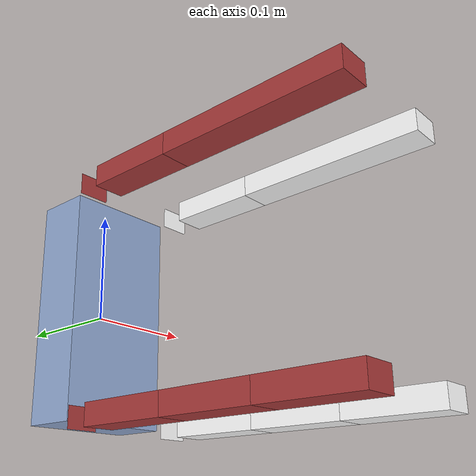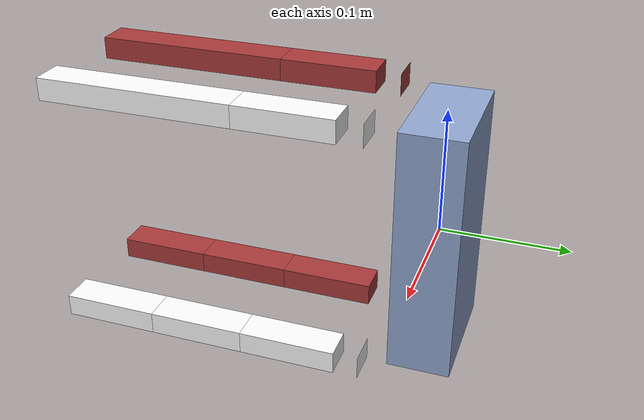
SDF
<?xml version='1.0' encoding='ASCII'?>
<sdf version="1.4">
  <model name="pendulum">
    <link name="Link00">
      <pose>0.000000 0.000000 0.000000 0.000000 0.000000 0.000000</pose>
      <inertial>
        <pose>0.000000 0.000000 0.000000 0.000000 0.000000 0.000000</pose>
        <mass>0.600000</mass>
        <inertia>
          <ixx>0.003541666667</ixx>
          <ixy>0.000000000000</ixy>
          <ixz>0.000000000000</ixz>
          <iyy>0.004166666667</iyy>
          <iyz>0.000000000000</iyz>
          <izz>0.001041666667</izz>
        </inertia>
      </inertial>
      <collision name="Link00_collision">
        <pose>0.000000 0.000000 0.000000 0.000000 0.000000 0.000000</pose>
        <geometry>
          <box>
            <size>0.100000 0.050000 0.200000</size>
          </box>
        </geometry>
      </collision>
      <visual name="Link00_vis_orig">
        <pose>0.000000 0.000000 0.000000 0.000000 0.000000 0.000000</pose>
        <geometry>
          <box>
            <size>0.100000 0.050000 0.200000</size>
          </box>
        </geometry>
        <material>
          <diffuse>0.568600 0.658800 0.819600</diffuse>
        </material>
      </visual>
    </link>
    <link name="Link02">
      <pose>0.050000 -0.025000 0.100000 0.000000 -0.000000 0.000000</pose>
      <inertial>
        <pose>0.000000 -0.020000 0.000000 0.000000 0.000000 0.000000</pose>
        <mass>0.170000</mass>
        <inertia>
          <ixx>0.000000833333</ixx>
          <ixy>0.000000000000</ixy>
          <ixz>0.000000000000</ixz>
          <iyy>0.000000833333</iyy>
          <iyz>0.000000000000</iyz>
          <izz>0.000000833333</izz>
        </inertia>
      </inertial>
      <collision name="Link02_collision">
        <pose>0.000000 -0.020000 0.000000 0.000000 0.000000 0.000000</pose>
        <geometry>
          <box>
            <size>0.028000 0.000000 0.018500</size>
          </box>
        </geometry>
      </collision>
      <visual name="Link02_vis_orig">
        <pose>0.000000 -0.020000 0.000000 0.000000 0.000000 0.000000</pose>
        <geometry>
          <box>
            <size>0.028000 0.000000 0.018500</size>
          </box>
        </geometry>
        <material>
          <diffuse>1.000000 1.000000 1.000000</diffuse>
        </material>
      </visual>
    </link>
    <link name="Link03">
      <pose>0.050000 -0.065000 0.100000 0.000000 -0.000000 0.000000</pose>
      <inertial>
        <pose>0.000000 -0.040000 0.000000 0.000000 0.000000 0.000000</pose>
        <mass>0.184359</mass>
        <inertia>
          <ixx>0.000027776667</ixx>
          <ixy>0.000000000000</ixy>
          <ixz>0.000000000000</ixz>
          <iyy>0.000000854667</iyy>
          <iyz>0.000000000000</iyz>
          <izz>0.000027776667</izz>
        </inertia>
      </inertial>
      <collision name="Link03_collision">
        <pose>0.000000 -0.040000 0.000000 0.000000 0.000000 0.000000</pose>
        <geometry>
          <box>
            <size>0.028000 0.080000 0.018500</size>
          </box>
        </geometry>
      </collision>
      <visual name="Link03_vis_orig">
        <pose>0.000000 -0.040000 0.000000 0.000000 0.000000 0.000000</pose>
        <geometry>
          <box>
            <size>0.028000 0.080000 0.018500</size>
          </box>
        </geometry>
        <material>
          <diffuse>1.000000 1.000000 1.000000</diffuse>
        </material>
      </visual>
    </link>
    <link name="Link04">
      <pose>0.050000 -0.145000 0.100000 0.000000 -0.000000 0.000000</pose>
      <inertial>
        <pose>0.000000 -0.080000 0.000000 0.000000 0.000000 0.000000</pose>
        <mass>0.034718</mass>
        <inertia>
          <ixx>0.000129014000</ixx>
          <ixy>0.000000000000</ixy>
          <ixz>0.000000000000</ixz>
          <iyy>0.000001004000</iyy>
          <iyz>0.000000000000</iyz>
          <izz>0.000129014000</izz>
        </inertia>
      </inertial>
      <collision name="Link04_collision">
        <pose>0.000000 -0.080000 0.000000 0.000000 0.000000 0.000000</pose>
        <geometry>
          <box>
            <size>0.028000 0.160000 0.018500</size>
          </box>
        </geometry>
      </collision>
      <visual name="Link04_vis_orig">
        <pose>0.000000 -0.080000 0.000000 0.000000 0.000000 0.000000</pose>
        <geometry>
          <box>
            <size>0.028000 0.160000 0.018500</size>
          </box>
        </geometry>
        <material>
          <diffuse>1.000000 1.000000 1.000000</diffuse>
        </material>
      </visual>
    </link>
    <link name="Link06">
      <pose>0.050000 -0.025000 -0.100000 0.000000 -0.000000 0.000000</pose>
      <inertial>
        <pose>0.000000 -0.020000 0.000000 0.000000 0.000000 0.000000</pose>
        <mass>0.170000</mass>
        <inertia>
          <ixx>0.000000833333</ixx>
          <ixy>0.000000000000</ixy>
          <ixz>0.000000000000</ixz>
          <iyy>0.000000833333</iyy>
          <iyz>0.000000000000</iyz>
          <izz>0.000000833333</izz>
        </inertia>
      </inertial>
      <collision name="Link06_collision">
        <pose>0.000000 -0.020000 0.000000 0.000000 0.000000 0.000000</pose>
        <geometry>
          <box>
            <size>0.028000 0.000000 0.018500</size>
          </box>
        </geometry>
      </collision>
      <visual name="Link06_vis_orig">
        <pose>0.000000 -0.020000 0.000000 0.000000 0.000000 0.000000</pose>
        <geometry>
          <box>
            <size>0.028000 0.000000 0.018500</size>
          </box>
        </geometry>
        <material>
          <diffuse>1.000000 1.000000 1.000000</diffuse>
        </material>
      </visual>
    </link>
    <link name="Link07">
      <pose>0.050000 -0.065000 -0.100000 0.000000 -0.000000 0.000000</pose>
      <inertial>
        <pose>0.000000 -0.040000 0.000000 0.000000 0.000000 0.000000</pose>
        <mass>0.184359</mass>
        <inertia>
          <ixx>0.000027776667</ixx>
          <ixy>0.000000000000</ixy>
          <ixz>0.000000000000</ixz>
          <iyy>0.000000854667</iyy>
          <iyz>0.000000000000</iyz>
          <izz>0.000027776667</izz>
        </inertia>
      </inertial>
      <collision name="Link07_collision">
        <pose>0.000000 -0.040000 0.000000 0.000000 0.000000 0.000000</pose>
        <geometry>
          <box>
            <size>0.028000 0.080000 0.018500</size>
          </box>
        </geometry>
      </collision>
      <visual name="Link07_vis_orig">
        <pose>0.000000 -0.040000 0.000000 0.000000 0.000000 0.000000</pose>
        <geometry>
          <box>
            <size>0.028000 0.080000 0.018500</size>
          </box>
        </geometry>
        <material>
          <diffuse>1.000000 1.000000 1.000000</diffuse>
        </material>
      </visual>
    </link>
    <link name="Link08">
      <pose>0.050000 -0.145000 -0.100000 0.000000 -0.000000 0.000000</pose>
      <inertial>
        <pose>0.000000 -0.040000 0.000000 0.000000 0.000000 0.000000</pose>
        <mass>0.184359</mass>
        <inertia>
          <ixx>0.000027776667</ixx>
          <ixy>0.000000000000</ixy>
          <ixz>0.000000000000</ixz>
          <iyy>0.000000854667</iyy>
          <iyz>0.000000000000</iyz>
          <izz>0.000027776667</izz>
        </inertia>
      </inertial>
      <collision name="Link08_collision">
        <pose>0.000000 -0.040000 0.000000 0.000000 0.000000 0.000000</pose>
        <geometry>
          <box>
            <size>0.028000 0.080000 0.018500</size>
          </box>
        </geometry>
      </collision>
      <visual name="Link08_vis_orig">
        <pose>0.000000 -0.040000 0.000000 0.000000 0.000000 0.000000</pose>
        <geometry>
          <box>
            <size>0.028000 0.080000 0.018500</size>
          </box>
        </geometry>
        <material>
          <diffuse>1.000000 1.000000 1.000000</diffuse>
        </material>
      </visual>
    </link>
    <link name="Link09">
      <pose>0.050000 -0.225000 -0.100000 0.000000 -0.000000 0.000000</pose>
      <inertial>
        <pose>0.000000 -0.040000 0.000000 0.000000 0.000000 0.000000</pose>
        <mass>0.020359</mass>
        <inertia>
          <ixx>0.000027776667</ixx>
          <ixy>0.000000000000</ixy>
          <ixz>0.000000000000</ixz>
          <iyy>0.000000854667</iyy>
          <iyz>0.000000000000</iyz>
          <izz>0.000027776667</izz>
        </inertia>
      </inertial>
      <collision name="Link09_collision">
        <pose>0.000000 -0.040000 0.000000 0.000000 0.000000 0.000000</pose>
        <geometry>
          <box>
            <size>0.028000 0.080000 0.018500</size>
          </box>
        </geometry>
      </collision>
      <visual name="Link09_vis_orig">
        <pose>0.000000 -0.040000 0.000000 0.000000 0.000000 0.000000</pose>
        <geometry>
          <box>
            <size>0.028000 0.080000 0.018500</size>
          </box>
        </geometry>
        <material>
          <diffuse>1.000000 1.000000 1.000000</diffuse>
        </material>
      </visual>
    </link>
    <link name="Link11">
      <pose>-0.050000 -0.025000 0.100000 0.000000 -0.000000 0.000000</pose>
      <inertial>
        <pose>0.000000 -0.020000 0.000000 0.000000 0.000000 0.000000</pose>
        <mass>0.170000</mass>
        <inertia>
          <ixx>0.000000833333</ixx>
          <ixy>0.000000000000</ixy>
          <ixz>0.000000000000</ixz>
          <iyy>0.000000833333</iyy>
          <iyz>0.000000000000</iyz>
          <izz>0.000000833333</izz>
        </inertia>
      </inertial>
      <collision name="Link11_collision">
        <pose>0.000000 -0.020000 0.000000 0.000000 0.000000 0.000000</pose>
        <geometry>
          <box>
            <size>0.028000 0.000000 0.018500</size>
          </box>
        </geometry>
      </collision>
      <visual name="Link11_vis_orig">
        <pose>0.000000 -0.020000 0.000000 0.000000 0.000000 0.000000</pose>
        <geometry>
          <box>
            <size>0.028000 0.000000 0.018500</size>
          </box>
        </geometry>
        <material>
          <diffuse>0.660000 0.224400 0.224400</diffuse>
        </material>
      </visual>
    </link>
    <link name="Link12">
      <pose>-0.050000 -0.065000 0.100000 0.000000 -0.000000 0.000000</pose>
      <inertial>
        <pose>0.000000 -0.040000 0.000000 0.000000 0.000000 0.000000</pose>
        <mass>0.184359</mass>
        <inertia>
          <ixx>0.000027776667</ixx>
          <ixy>0.000000000000</ixy>
          <ixz>0.000000000000</ixz>
          <iyy>0.000000854667</iyy>
          <iyz>0.000000000000</iyz>
          <izz>0.000027776667</izz>
        </inertia>
      </inertial>
      <collision name="Link12_collision">
        <pose>0.000000 -0.040000 0.000000 0.000000 0.000000 0.000000</pose>
        <geometry>
          <box>
            <size>0.028000 0.080000 0.018500</size>
          </box>
        </geometry>
      </collision>
      <visual name="Link12_vis_orig">
        <pose>0.000000 -0.040000 0.000000 0.000000 0.000000 0.000000</pose>
        <geometry>
          <box>
            <size>0.028000 0.080000 0.018500</size>
          </box>
        </geometry>
        <material>
          <diffuse>0.660000 0.224400 0.224400</diffuse>
        </material>
      </visual>
    </link>
    <link name="Link13">
      <pose>-0.050000 -0.145000 0.100000 0.000000 -0.000000 0.000000</pose>
      <inertial>
        <pose>0.000000 -0.080000 0.000000 0.000000 0.000000 0.000000</pose>
        <mass>0.034718</mass>
        <inertia>
          <ixx>0.000129014000</ixx>
          <ixy>0.000000000000</ixy>
          <ixz>0.000000000000</ixz>
          <iyy>0.000001004000</iyy>
          <iyz>0.000000000000</iyz>
          <izz>0.000129014000</izz>
        </inertia>
      </inertial>
      <collision name="Link13_collision">
        <pose>0.000000 -0.080000 0.000000 0.000000 0.000000 0.000000</pose>
        <geometry>
          <box>
            <size>0.028000 0.160000 0.018500</size>
          </box>
        </geometry>
      </collision>
      <visual name="Link13_vis_orig">
        <pose>0.000000 -0.080000 0.000000 0.000000 0.000000 0.000000</pose>
        <geometry>
          <box>
            <size>0.028000 0.160000 0.018500</size>
          </box>
        </geometry>
        <material>
          <diffuse>0.660000 0.224400 0.224400</diffuse>
        </material>
      </visual>
    </link>
    <link name="Link15">
      <pose>-0.050000 -0.025000 -0.100000 0.000000 -0.000000 0.000000</pose>
      <inertial>
        <pose>0.000000 -0.020000 0.000000 0.000000 0.000000 0.000000</pose>
        <mass>0.170000</mass>
        <inertia>
          <ixx>0.000000833333</ixx>
          <ixy>0.000000000000</ixy>
          <ixz>0.000000000000</ixz>
          <iyy>0.000000833333</iyy>
          <iyz>0.000000000000</iyz>
          <izz>0.000000833333</izz>
        </inertia>
      </inertial>
      <collision name="Link15_collision">
        <pose>0.000000 -0.020000 0.000000 0.000000 0.000000 0.000000</pose>
        <geometry>
          <box>
            <size>0.028000 0.000000 0.018500</size>
          </box>
        </geometry>
      </collision>
      <visual name="Link15_vis_orig">
        <pose>0.000000 -0.020000 0.000000 0.000000 0.000000 0.000000</pose>
        <geometry>
          <box>
            <size>0.028000 0.000000 0.018500</size>
          </box>
        </geometry>
        <material>
          <diffuse>0.660000 0.224400 0.224400</diffuse>
        </material>
      </visual>
    </link>
    <link name="Link16">
      <pose>-0.050000 -0.065000 -0.100000 0.000000 -0.000000 0.000000</pose>
      <inertial>
        <pose>0.000000 -0.040000 0.000000 0.000000 0.000000 0.000000</pose>
        <mass>0.184359</mass>
        <inertia>
          <ixx>0.000027776667</ixx>
          <ixy>0.000000000000</ixy>
          <ixz>0.000000000000</ixz>
          <iyy>0.000000854667</iyy>
          <iyz>0.000000000000</iyz>
          <izz>0.000027776667</izz>
        </inertia>
      </inertial>
      <collision name="Link16_collision">
        <pose>0.000000 -0.040000 0.000000 0.000000 0.000000 0.000000</pose>
        <geometry>
          <box>
            <size>0.028000 0.080000 0.018500</size>
          </box>
        </geometry>
      </collision>
      <visual name="Link16_vis_orig">
        <pose>0.000000 -0.040000 0.000000 0.000000 0.000000 0.000000</pose>
        <geometry>
          <box>
            <size>0.028000 0.080000 0.018500</size>
          </box>
        </geometry>
        <material>
          <diffuse>0.660000 0.224400 0.224400</diffuse>
        </material>
      </visual>
    </link>
    <link name="Link17">
      <pose>-0.050000 -0.145000 -0.100000 0.000000 -0.000000 0.000000</pose>
      <inertial>
        <pose>0.000000 -0.040000 0.000000 0.000000 0.000000 0.000000</pose>
        <mass>0.184359</mass>
        <inertia>
          <ixx>0.000027776667</ixx>
          <ixy>0.000000000000</ixy>
          <ixz>0.000000000000</ixz>
          <iyy>0.000000854667</iyy>
          <iyz>0.000000000000</iyz>
          <izz>0.000027776667</izz>
        </inertia>
      </inertial>
      <collision name="Link17_collision">
        <pose>0.000000 -0.040000 0.000000 0.000000 0.000000 0.000000</pose>
        <geometry>
          <box>
            <size>0.028000 0.080000 0.018500</size>
          </box>
        </geometry>
      </collision>
      <visual name="Link17_vis_orig">
        <pose>0.000000 -0.040000 0.000000 0.000000 0.000000 0.000000</pose>
        <geometry>
          <box>
            <size>0.028000 0.080000 0.018500</size>
          </box>
        </geometry>
        <material>
          <diffuse>0.660000 0.224400 0.224400</diffuse>
        </material>
      </visual>
    </link>
    <link name="Link18">
      <pose>-0.050000 -0.225000 -0.100000 0.000000 -0.000000 0.000000</pose>
      <inertial>
        <pose>0.000000 -0.040000 0.000000 0.000000 0.000000 0.000000</pose>
        <mass>0.020359</mass>
        <inertia>
          <ixx>0.000027776667</ixx>
          <ixy>0.000000000000</ixy>
          <ixz>0.000000000000</ixz>
          <iyy>0.000000854667</iyy>
          <iyz>0.000000000000</iyz>
          <izz>0.000027776667</izz>
        </inertia>
      </inertial>
      <collision name="Link18_collision">
        <pose>0.000000 -0.040000 0.000000 0.000000 0.000000 0.000000</pose>
        <geometry>
          <box>
            <size>0.028000 0.080000 0.018500</size>
          </box>
        </geometry>
      </collision>
      <visual name="Link18_vis_orig">
        <pose>0.000000 -0.040000 0.000000 0.000000 0.000000 0.000000</pose>
        <geometry>
          <box>
            <size>0.028000 0.080000 0.018500</size>
          </box>
        </geometry>
        <material>
          <diffuse>0.660000 0.224400 0.224400</diffuse>
        </material>
      </visual>
    </link>
    <joint type="revolute" name="Joint02">
      <parent>Link00</parent>
      <child>Link02</child>
      <axis>
        <xyz>1.000000 0.000000 0.000000</xyz>
        <limit>
          <lower>-2.617994</lower>
          <upper>2.617994</upper>
          <effort>200.000000</effort>
          <velocity>12.000000</velocity>
        </limit>
        <dynamics>
          <damping>0.100000</damping>
        </dynamics>
        <use_parent_model_frame>0</use_parent_model_frame>
      </axis>
    </joint>
    <joint type="revolute" name="Joint03">
      <parent>Link02</parent>
      <child>Link03</child>
      <axis>
        <xyz>0.000000 0.000000 1.000000</xyz>
        <limit>
          <lower>-0.523599</lower>
          <upper>2.617994</upper>
          <effort>200.000000</effort>
          <velocity>12.000000</velocity>
        </limit>
        <dynamics>
          <damping>0.100000</damping>
        </dynamics>
        <use_parent_model_frame>0</use_parent_model_frame>
      </axis>
    </joint>
    <joint type="revolute" name="Joint04">
      <parent>Link03</parent>
      <child>Link04</child>
      <axis>
        <xyz>1.000000 0.000000 0.000000</xyz>
        <limit>
          <lower>-2.617994</lower>
          <upper>0.000000</upper>
          <effort>200.000000</effort>
          <velocity>12.000000</velocity>
        </limit>
        <dynamics>
          <damping>0.100000</damping>
        </dynamics>
        <use_parent_model_frame>0</use_parent_model_frame>
      </axis>
    </joint>
    <joint type="revolute" name="Joint06">
      <parent>Link00</parent>
      <child>Link06</child>
      <axis>
        <xyz>1.000000 0.000000 0.000000</xyz>
        <limit>
          <lower>-2.617994</lower>
          <upper>2.617994</upper>
          <effort>200.000000</effort>
          <velocity>12.000000</velocity>
        </limit>
        <dynamics>
          <damping>0.100000</damping>
        </dynamics>
        <use_parent_model_frame>0</use_parent_model_frame>
      </axis>
    </joint>
    <joint type="revolute" name="Joint07">
      <parent>Link06</parent>
      <child>Link07</child>
      <axis>
        <xyz>0.000000 0.000000 1.000000</xyz>
        <limit>
          <lower>-0.523599</lower>
          <upper>2.617994</upper>
          <effort>200.000000</effort>
          <velocity>12.000000</velocity>
        </limit>
        <dynamics>
          <damping>0.100000</damping>
        </dynamics>
        <use_parent_model_frame>0</use_parent_model_frame>
      </axis>
    </joint>
    <joint type="revolute" name="Joint08">
      <parent>Link07</parent>
      <child>Link08</child>
      <axis>
        <xyz>1.000000 0.000000 0.000000</xyz>
        <limit>
          <lower>0.000000</lower>
          <upper>2.617994</upper>
          <effort>200.000000</effort>
          <velocity>12.000000</velocity>
        </limit>
        <dynamics>
          <damping>0.100000</damping>
        </dynamics>
        <use_parent_model_frame>0</use_parent_model_frame>
      </axis>
    </joint>
    <joint type="revolute" name="Joint09">
      <parent>Link08</parent>
      <child>Link09</child>
      <axis>
        <xyz>1.000000 0.000000 0.000000</xyz>
        <limit>
          <lower>-2.617994</lower>
          <upper>2.617994</upper>
          <effort>200.000000</effort>
          <velocity>12.000000</velocity>
        </limit>
        <dynamics>
          <damping>0.100000</damping>
        </dynamics>
        <use_parent_model_frame>0</use_parent_model_frame>
      </axis>
    </joint>
    <joint type="revolute" name="Joint11">
      <parent>Link00</parent>
      <child>Link11</child>
      <axis>
        <xyz>1.000000 0.000000 0.000000</xyz>
        <limit>
          <lower>-2.617994</lower>
          <upper>2.617994</upper>
          <effort>200.000000</effort>
          <velocity>12.000000</velocity>
        </limit>
        <dynamics>
          <damping>0.100000</damping>
        </dynamics>
        <use_parent_model_frame>0</use_parent_model_frame>
      </axis>
    </joint>
    <joint type="revolute" name="Joint12">
      <parent>Link11</parent>
      <child>Link12</child>
      <axis>
        <xyz>0.000000 0.000000 1.000000</xyz>
        <limit>
          <lower>-2.617994</lower>
          <upper>0.523599</upper>
          <effort>200.000000</effort>
          <velocity>12.000000</velocity>
        </limit>
        <dynamics>
          <damping>0.100000</damping>
        </dynamics>
        <use_parent_model_frame>0</use_parent_model_frame>
      </axis>
    </joint>
    <joint type="revolute" name="Joint13">
      <parent>Link12</parent>
      <child>Link13</child>
      <axis>
        <xyz>1.000000 0.000000 0.000000</xyz>
        <limit>
          <lower>-2.617994</lower>
          <upper>0.000000</upper>
          <effort>200.000000</effort>
          <velocity>12.000000</velocity>
        </limit>
        <dynamics>
          <damping>0.100000</damping>
        </dynamics>
        <use_parent_model_frame>0</use_parent_model_frame>
      </axis>
    </joint>
    <joint type="revolute" name="Joint15">
      <parent>Link00</parent>
      <child>Link15</child>
      <axis>
        <xyz>1.000000 0.000000 0.000000</xyz>
        <limit>
          <lower>-2.617994</lower>
          <upper>2.617994</upper>
          <effort>200.000000</effort>
          <velocity>12.000000</velocity>
        </limit>
        <dynamics>
          <damping>0.100000</damping>
        </dynamics>
        <use_parent_model_frame>0</use_parent_model_frame>
      </axis>
    </joint>
    <joint type="revolute" name="Joint16">
      <parent>Link15</parent>
      <child>Link16</child>
      <axis>
        <xyz>0.000000 0.000000 1.000000</xyz>
        <limit>
          <lower>-2.617994</lower>
          <upper>0.523599</upper>
          <effort>200.000000</effort>
          <velocity>12.000000</velocity>
        </limit>
        <dynamics>
          <damping>0.100000</damping>
        </dynamics>
        <use_parent_model_frame>0</use_parent_model_frame>
      </axis>
    </joint>
    <joint type="revolute" name="Joint17">
      <parent>Link16</parent>
      <child>Link17</child>
      <axis>
        <xyz>1.000000 0.000000 0.000000</xyz>
        <limit>
          <lower>0.000000</lower>
          <upper>2.617994</upper>
          <effort>200.000000</effort>
          <velocity>12.000000</velocity>
        </limit>
        <dynamics>
          <damping>0.100000</damping>
        </dynamics>
        <use_parent_model_frame>0</use_parent_model_frame>
      </axis>
    </joint>
    <joint type="revolute" name="Joint18">
      <parent>Link17</parent>
      <child>Link18</child>
      <axis>
        <xyz>1.000000 0.000000 0.000000</xyz>
        <limit>
          <lower>-2.617994</lower>
          <upper>2.617994</upper>
          <effort>200.000000</effort>
          <velocity>12.000000</velocity>
        </limit>
        <dynamics>
          <damping>0.100000</damping>
        </dynamics>
        <use_parent_model_frame>0</use_parent_model_frame>
      </axis>
    </joint>
  </model>
</sdf>
